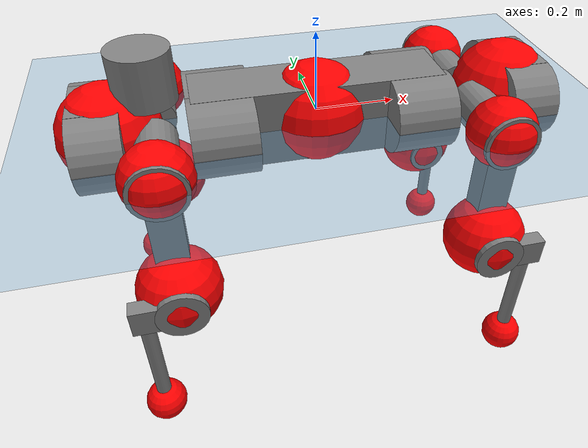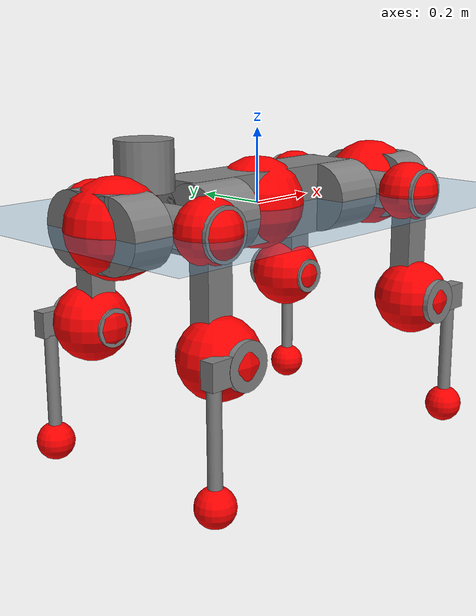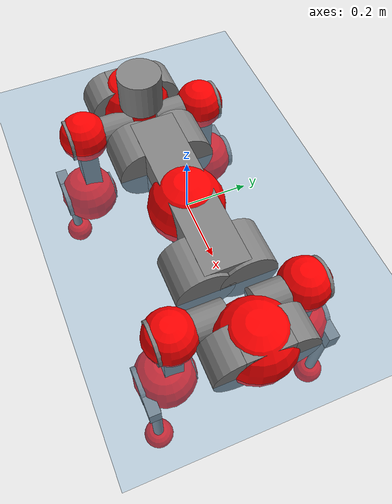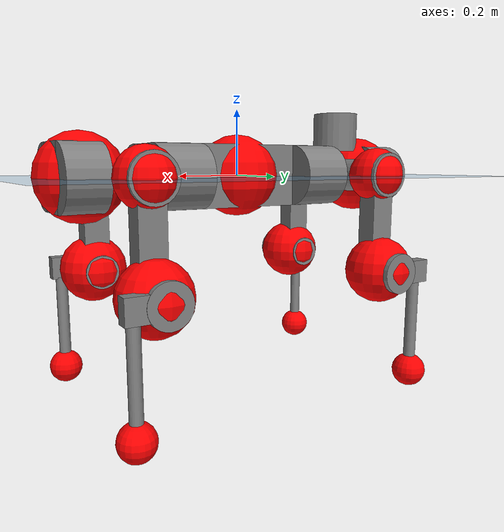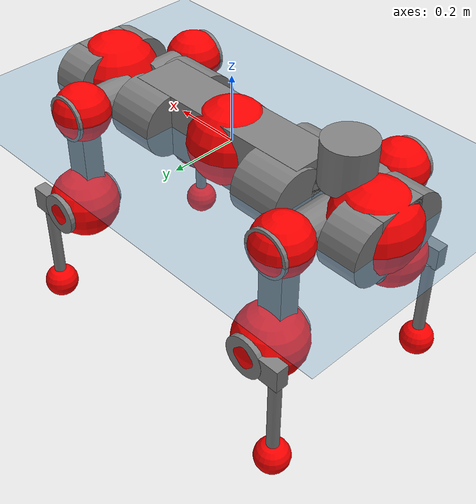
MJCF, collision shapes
<mujoco model="anymal_c">
  <compiler angle="radian" assetdir="assets" balanceinertia="true" inertiafromgeom="false"/>

  <option timestep="0.005" density="1.2" viscosity="2e-05"/>

  <size nkey="1"/>

  <visual>
    <quality shadowsize="8192"/>
    <map shadowclip="0.5"/>
  </visual>

  <default>
    <default class="/">
      <material specular="0" shininess="0.25"/>
      <geom contype="0" conaffinity="0" group="1" solref="-1000 -80"/>
      <site size="0.01 0.005 0.005" group="5"/>
      <general forcelimited="true" forcerange="-80 80" biastype="affine" gainprm="80" biasprm="0 -80 -2"/>
      <default class="anymal_c">
        <joint armature="0.01" damping="0.01" frictionloss="0.1"/>
        <default class="visual">
          <geom type="mesh" group="2"/>
          <default class="visual_zflip"/>
        </default>
        <default class="collision">
          <geom type="cylinder" group="3"/>
          <default class="foot">
            <geom size="0.03 0 0" type="sphere" condim="6" priority="1" friction="0.8 0.02 0.01" solimp="0.015 1 0.03"/>
          </default>
        </default>
      </default>
      <default class="reward_collision_sphere">
        <geom group="5" rgba="1 0 0 1"/>
      </default>
    </default>
  </default>

  <asset>
    <texture type="skybox" colorspace="auto" name="//unnamed_texture_0" builtin="gradient" rgb1="0.95 0.95 0.95" rgb2="0.95 0.95 0.95" width="100" height="600"/>
    <texture type="2d" colorspace="auto" name="texplane" builtin="checker" rgb1="0.345 0.575 0.748" rgb2="0.345 0.575 0.748" markrgb="1 1 1" width="512" height="512"/>
    <texture type="2d" colorspace="linear" name="base" file="base.png"/>
    <texture type="2d" colorspace="linear" name="top_shell" file="top_shell.png"/>
    <texture type="2d" colorspace="linear" name="bottom_shell" file="bottom_shell.png"/>
    <texture type="2d" colorspace="linear" name="remote" file="remote.png"/>
    <texture type="2d" colorspace="linear" name="hatch" file="hatch.png"/>
    <texture type="2d" colorspace="linear" name="handle" file="handle.png"/>
    <texture type="2d" colorspace="linear" name="face" file="face.png"/>
    <texture type="2d" colorspace="linear" name="battery" file="battery.png"/>
    <texture type="2d" colorspace="linear" name="lidar_cage" file="lidar_cage.png"/>
    <texture type="2d" colorspace="linear" name="depth_camera" file="depth_camera.png"/>
    <texture type="2d" colorspace="linear" name="wide_angle_camera" file="wide_angle_camera.png"/>
    <texture type="2d" colorspace="linear" name="lidar" file="lidar.png"/>
    <texture type="2d" colorspace="linear" name="drive" file="drive.png"/>
    <texture type="2d" colorspace="linear" name="hip_l" file="hip_l.png"/>
    <texture type="2d" colorspace="linear" name="shank_l" file="shank_l.png"/>
    <texture type="2d" colorspace="linear" name="foot" file="foot.png"/>
    <texture type="2d" colorspace="linear" name="thigh" file="thigh.png"/>
    <texture type="2d" colorspace="linear" name="shank_r" file="shank_r.png"/>
    <texture type="2d" colorspace="linear" name="hip_r" file="hip_r.png"/>
    <material name="MatPlane" class="/" texture="texplane" texuniform="true" texrepeat="2 2" specular="0.9" shininess="0.5"/>
    <material name="black_plastic" class="/" rgba="0.007 0.007 0.007 1"/>
    <material name="green" class="/" rgba="0.052 0.178 0.033 1"/>
    <material name="red" class="/" rgba="0.178 0.006 0.005 1"/>
    <material name="yellow" class="/" rgba="0.178 0.119 0.006 1"/>
    <material name="lwl" class="/" rgba="0.8 0.8 0.8 1"/>
    <material name="base" class="/" texture="base"/>
    <material name="top_shell" class="/" texture="top_shell"/>
    <material name="bottom_shell" class="/" texture="bottom_shell"/>
    <material name="hip_l" class="/" texture="hip_l"/>
    <material name="thigh" class="/" texture="thigh"/>
    <material name="shank_l" class="/" texture="shank_l"/>
    <material name="foot" class="/" texture="foot"/>
    <material name="hip_r" class="/" texture="hip_r"/>
    <material name="shank" class="/" texture="shank_r"/>
    <material name="hatch" class="/" texture="hatch"/>
    <material name="remote" class="/" texture="remote"/>
    <material name="handle" class="/" texture="handle"/>
    <material name="face" class="/" texture="face"/>
    <material name="depth_camera" class="/" texture="depth_camera"/>
    <material name="wide_angle_camera" class="/" texture="wide_angle_camera"/>
    <material name="battery" class="/" texture="battery"/>
    <material name="lidar_cage" class="/" texture="lidar_cage"/>
    <material name="lidar" class="/" texture="lidar"/>
    <material name="drive" class="/" texture="drive"/>
    <mesh name="base_0" class="/" file="base_0.obj"/>
    <mesh name="base_1" class="/" file="base_1.obj"/>
    <mesh name="base_2" class="/" file="base_2.obj"/>
    <mesh name="base_3" class="/" file="base_3.obj"/>
    <mesh name="base_4" class="/" file="base_4.obj"/>
    <mesh name="base_5" class="/" file="base_5.obj"/>
    <mesh name="top_shell" class="/" file="top_shell.obj"/>
    <mesh name="bottom_shell" class="/" file="bottom_shell.obj"/>
    <mesh name="remote" class="/" file="remote.obj"/>
    <mesh name="handle" class="/" file="handle.obj"/>
    <mesh name="face" class="/" file="face.obj"/>
    <mesh name="wide_angle_camera" class="/" file="wide_angle_camera.obj"/>
    <mesh name="depth_camera" class="/" file="depth_camera.obj"/>
    <mesh name="battery" class="/" file="battery.obj"/>
    <mesh name="lidar_cage" class="/" file="lidar_cage.obj"/>
    <mesh name="lidar" class="/" file="lidar.obj"/>
    <mesh name="drive" class="/" file="drive.obj"/>
    <mesh name="hip_l" class="/" file="hip_l.obj"/>
    <mesh name="thigh" class="/" file="thigh.obj"/>
    <mesh name="shank_l" class="/" file="shank_l.obj"/>
    <mesh name="foot" class="/" file="foot.obj"/>
    <mesh name="hip_r" class="/" file="hip_r.obj"/>
    <mesh name="hatch" class="/" file="hatch.obj"/>
    <mesh name="shank_r" class="/" file="shank_r.obj"/>
  </asset>

  <worldbody>
    <geom name="floor" class="/" size="100 100 0.125" type="plane" group="0" material="MatPlane"/>
    <light name="toplight_shadow" class="/" pos="0 0 5" dir="0.0990148 0.0990148 -0.990148" type="directional" ambient="0.04 0.04 0.04" diffuse="0.55 0.55 0.55" specular="0.12 0.12 0.12"/>
    <light name="toplight_fill" class="/" pos="0 0 5" dir="0.0990148 0.0990148 -0.990148" type="directional" castshadow="false" ambient="0.04 0.04 0.04" diffuse="0.3 0.3 0.3" specular="0.08 0.08 0.08"/>
    <body name="trunk" childclass="anymal_c" pos="0.000265557 -0.000307117 0.000657952" quat="1 0.000587861 0.000250797 0.000397014">
      <inertial pos="0.000892434 -0.00273348 0.0499212" quat="0.501063 0.49854 0.498336 0.502052" mass="22.4963" diaginertia="1.00893 0.571067 0.280784"/>
      <joint name="//unnamed_joint_0" type="free" armature="0" damping="0" frictionloss="0"/>
      <geom name="//unnamed_geom_1" class="visual" material="green" mesh="base_0"/>
      <geom name="//unnamed_geom_2" class="visual" material="yellow" mesh="base_1"/>
      <geom name="//unnamed_geom_3" class="visual" material="red" mesh="base_2"/>
      <geom name="//unnamed_geom_4" class="visual" material="black_plastic" mesh="base_3"/>
      <geom name="//unnamed_geom_5" class="visual" material="lwl" mesh="base_4"/>
      <geom name="//unnamed_geom_6" class="visual" material="base" mesh="base_5"/>
      <geom name="trunk_1" class="collision" size="0.303017 0.0731421 0.0940398" type="box"/>
      <geom name="trunk_2" class="collision" size="0.0940398 0.0757543" pos="0.238347 0.0688682 0" quat="0.707107 0 0.707107 0"/>
      <geom name="trunk_3" class="collision" size="0.0940398 0.0757543" pos="-0.238347 0.0688682 0" quat="0.707107 0 0.707107 0"/>
      <geom name="trunk_4" class="collision" size="0.0940398 0.0757543" pos="0.238347 -0.0688682 0" quat="0.707107 0 0.707107 0"/>
      <geom name="trunk_5" class="collision" size="0.0940398 0.0757543" pos="-0.238347 -0.0688682 0" quat="0.707107 0 0.707107 0"/>
      <geom name="//unnamed_geom_12" class="visual" material="top_shell" mesh="top_shell"/>
      <geom name="//unnamed_geom_13" class="visual" material="bottom_shell" mesh="bottom_shell"/>
      <geom name="//unnamed_geom_14" class="visual" material="remote" mesh="remote"/>
      <geom name="//unnamed_geom_15" class="visual" material="handle" mesh="handle"/>
      <geom name="//unnamed_geom_16" class="visual" pos="0.454229 0 0" quat="1 0 0 0" material="face" mesh="face"/>
      <geom name="trunk_6" class="collision" size="0.0574688 0.0731421 0.0940398" pos="0.514501 0 0" type="box"/>
      <geom name="//unnamed_geom_18" class="collision" size="0.0940398 0.0574688" pos="0.514501 0.0688682 0" quat="0.707107 0 0.707107 0"/>
      <geom name="//unnamed_geom_19" class="collision" size="0.0940398 0.0574688" pos="0.514501 -0.0688682 0" quat="0.707107 0 0.707107 0"/>
      <geom name="//unnamed_geom_20" class="visual" pos="0.505896 0 -0.0304948" quat="0.965926 0 0.258819 0" material="depth_camera" mesh="depth_camera"/>
      <geom name="//unnamed_geom_21" class="visual" pos="0.56217 0 0.0157931" material="wide_angle_camera" mesh="wide_angle_camera"/>
      <geom name="//unnamed_geom_22" class="visual_zflip" pos="-0.454229 0 0" quat="0 0 0 1" material="face" mesh="face"/>
      <geom name="trunk_7" class="collision" size="0.0574688 0.0731421 0.0940398" pos="-0.514501 0 0" quat="0 0 0 1" type="box"/>
      <geom name="//unnamed_geom_24" class="collision" size="0.0940398 0.0574688" pos="-0.514501 -0.0688682 0" quat="0 -0.707107 0 0.707107"/>
      <geom name="//unnamed_geom_25" class="collision" size="0.0940398 0.0574688" pos="-0.514501 0.0688682 0" quat="0 -0.707107 0 0.707107"/>
      <geom name="//unnamed_geom_26" class="visual" pos="-0.505896 0 -0.0304948" quat="0 -0.258819 0 0.965926" material="depth_camera" mesh="depth_camera"/>
      <geom name="//unnamed_geom_27" class="visual_zflip" pos="-0.56217 0 0.0157931" quat="0 0 0 1" material="wide_angle_camera" mesh="wide_angle_camera"/>
      <geom name="//unnamed_geom_28" class="visual" material="battery" mesh="battery"/>
      <geom name="//unnamed_geom_29" class="visual" pos="0 0.0737522 0.0309578" quat="0.683013 -0.183013 0.183013 0.683013" material="depth_camera" mesh="depth_camera"/>
      <geom name="//unnamed_geom_30" class="visual" pos="0 -0.0737522 0.0309578" quat="0.683013 0.183013 0.183013 -0.683013" material="depth_camera" mesh="depth_camera"/>
      <geom name="//unnamed_geom_31" class="visual" pos="-0.398889 0 0.0775411" quat="1 0 0 0" material="lidar_cage" mesh="lidar_cage"/>
      <geom name="trunk_8" class="collision" size="0.0731421 0.0626932" pos="-0.398889 0 0.14084"/>
      <geom name="//unnamed_geom_33" class="visual" pos="-0.398889 -4.4008e-05 0.150018" quat="0.707107 0 0 -0.707107" material="lidar" mesh="lidar"/>
      <geom name="//unnamed_geom_34" class="visual" pos="0.328645 0.102344 -1.22732e-09" quat="0.258819 0.965926 0 0" material="drive" mesh="drive"/>
      <geom name="//unnamed_geom_35" class="visual" pos="0.328645 -0.102344 1.22732e-09" quat="0.258819 -0.965926 0 0" material="drive" mesh="drive"/>
      <geom name="//unnamed_geom_36" class="visual" pos="-0.328645 0.102344 1.22732e-09" quat="0 0 0.965926 -0.258819" material="drive" mesh="drive"/>
      <geom name="//unnamed_geom_37" class="visual" pos="-0.328645 -0.102344 -1.22732e-09" quat="0 0 -0.965926 -0.258819" material="drive" mesh="drive"/>
      <geom name="//unnamed_geom_38" class="visual" pos="0.127118 0 0.0770136" quat="1 0 0 0" material="hatch" mesh="hatch"/>
      <geom name="//unnamed_geom_39" class="reward_collision_sphere" size="0.125386"/>
      <geom name="//unnamed_geom_40" class="reward_collision_sphere" size="0.125386" pos="0.493132 0 0"/>
      <geom name="//unnamed_geom_41" class="reward_collision_sphere" size="0.125386" pos="-0.493132 0 0"/>
      <site name="imu" pos="0.285074 0.00765016 0.0363223" size="0.0104489"/>
      <camera name="track" pos="0 -1.96766 0" quat="0.707107 0.707107 0 0" mode="trackcom"/>
      <camera name="ego_camera" pos="0.493132 0 -0.0421992" quat="-0.5 -0.5 0.5 0.5"/>
      <body name="LF_HIP" pos="0.326298 0.0996996 -0.00134909" quat="0.258299 0.966065 -2.07857e-05 -3.12662e-05">
        <inertial pos="0.0619333 -0.0175407 -0.00779378" quat="-0.127962 0.709587 -0.135434 0.679536" mass="3.17702" diaginertia="0.0091119 0.00427663 0.00418858"/>
        <joint name="LF_HAA" pos="0 0 0" axis="0.999999 -0.00150043 0.000295443" range="-0.724187 0.514254" armature="0.0104611" damping="0.0226912" frictionloss="0.0906784"/>
        <geom name="//unnamed_geom_42" class="visual" pos="0 -7.21976e-05 1.18584e-05" quat="0.258819 -0.965926 0 0" material="hip_l" mesh="hip_l"/>
        <geom name="//unnamed_geom_43" class="visual" pos="0.0656413 -0.0780888 -0.0456108" quat="0.183013 -0.683013 0.683013 0.183013" material="drive" mesh="drive"/>
        <geom name="//unnamed_geom_44" class="collision" size="0.0522443 0.0731421" pos="0.0656413 -0.0117664 -0.00728464" quat="-0.353553 -0.612372 0.612372 -0.353553"/>
        <body name="LF_THIGH" pos="0.0638815 -0.0689678 -0.0429177" quat="0.183732 -0.682901 0.683226 0.181912">
          <inertial pos="0.0337325 0.000222718 -0.257027" quat="0.99287 0.0072187 -0.0776076 0.0901914" mass="3.41755" diaginertia="0.0483288 0.0271128 0.00553666"/>
          <joint name="LF_HFE" pos="0 0 0" axis="0.999996 0.00296763 0.000237169" stiffness="0.00358765" range="-3.08909 3.19011" armature="0.0106125" damping="0.0220951" frictionloss="0.0928655"/>
          <geom name="//unnamed_geom_45" class="visual" pos="0.00222868 3.51187e-06 0" quat="0.707107 0 0 -0.707107" material="thigh" mesh="thigh"/>
          <geom name="//unnamed_geom_46" class="collision" size="0.0679176 0.0417955" pos="0.0438339 0 0" quat="0.5 0.5 -0.5 -0.5"/>
          <geom name="//unnamed_geom_47" class="collision" size="0.0391833 0.0313466 0.147657" pos="0.0328754 0 -0.149084" quat="0.707107 0 0 -0.707107" type="box"/>
          <geom name="//unnamed_geom_48" class="visual" pos="0.109914 0 -0.300669" quat="1 0 0 0" material="drive" mesh="drive"/>
          <geom name="//unnamed_geom_49" class="collision" size="0.0522443 0.0731421" pos="0.0332042 0 -0.300669" quat="0.707107 0 0.707107 0"/>
          <geom name="//unnamed_geom_50" class="reward_collision_sphere" size="0.0835909" pos="0.0273962 0 0"/>
          <body name="LF_SHANK" pos="0.111201 0.00267338 -0.299582" quat="1 6.15346e-05 -0.00012255 3.88513e-05">
            <inertial pos="0.00569042 -0.0609325 -0.0868245" quat="0.993009 -0.115016 0.00110626 -0.0265326" mass="0.681468" diaginertia="0.0156854 0.00851928 0.00146665"/>
            <joint name="LF_KFE" pos="0 0 0" axis="0.999982 -0.00592794 0.000273334" range="-3.0888 3.14887" armature="0.0107314" damping="0.00500161" frictionloss="0.107335"/>
            <geom name="//unnamed_geom_51" class="visual" pos="0.000726722 0.00387492 0" quat="0.707107 0 0 -0.707107" material="shank_l" mesh="shank_l"/>
            <geom name="LF_kfe_act" class="collision" size="0.0626932 0.0208977" pos="0.021917 0 0" quat="0.5 0.5 -0.5 -0.5"/>
            <geom name="//unnamed_geom_53" class="collision" size="0.0600799 0.0352649 0.0198528" pos="0.021917 -0.0565694 0" quat="0.5 0.5 -0.5 -0.5" type="box"/>
            <geom name="//unnamed_geom_54" class="visual" pos="0.0143006 -0.0852793 -0.356552" quat="0.382683 0 0 -0.92388" material="foot" mesh="foot"/>
            <geom name="LF_calf" class="collision" size="0.0182855 0.147592" pos="0.0143008 -0.086528 -0.178276" quat="0.707107 0 0 -0.707107"/>
            <geom name="LF_foot" class="foot" size="0.0309676" pos="0.0143008 -0.086528 -0.332815" quat="0.707107 0 0 -0.707107"/>
            <geom name="//unnamed_geom_57" class="reward_collision_sphere" size="0.104489" pos="-0.0547924 0 0"/>
            <geom name="//unnamed_geom_58" class="reward_collision_sphere" size="0.0522443" pos="0.0143008 -0.086528 -0.332815"/>
            <site name="LF_foot" class="foot" pos="0.0143008 -0.086528 -0.332815" quat="0.707107 0 0 -0.707107" size="0.0104489"/>
          </body>
        </body>
      </body>
      <body name="RF_HIP" pos="0.326595 -0.102717 0.000508641" quat="0.258805 -0.96593 -3.3757e-05 6.45611e-05">
        <inertial pos="0.0597399 0.0135836 -0.011457" quat="0.133136 0.680148 0.117746 0.711203" mass="3.15856" diaginertia="0.00881998 0.00461932 0.00409712"/>
        <joint name="RF_HAA" pos="0 0 0" axis="0.999926 -0.0110169 0.0052489" range="-0.513411 0.728541" armature="0.010698" damping="0" frictionloss="0.10894"/>
        <geom name="//unnamed_geom_59" class="visual" pos="0 7.2197e-05 1.18584e-05" quat="0.258819 0.965926 0 0" material="hip_r" mesh="hip_r"/>
        <geom name="//unnamed_geom_60" class="visual" pos="0.0656413 0.0780888 -0.0456108" quat="0.183013 0.683013 0.683013 -0.183013" material="drive" mesh="drive"/>
        <geom name="//unnamed_geom_61" class="collision" size="0.0522443 0.0731421" pos="0.0656413 0.0117664 -0.00728464" quat="-0.353553 0.612372 0.612372 0.353553"/>
        <body name="RF_THIGH" pos="0.0680161 0.069918 -0.0467656" quat="0.182766 0.683668 0.682666 -0.182103">
          <inertial pos="0.0362766 -0.000328152 -0.261089" quat="0.994081 -0.00235632 -0.0722268 0.0811195" mass="3.66601" diaginertia="0.0468072 0.0268795 0.0056984"/>
          <joint name="RF_HFE" pos="0 0 0" axis="0.999999 -0.000248392 -0.0014363" range="-3.13097 3.15609" armature="0.00921822" damping="0.0102686" frictionloss="0.111216"/>
          <geom name="//unnamed_geom_62" class="visual" pos="0.00222868 3.51187e-06 0" quat="0.707107 0 0 -0.707107" material="thigh" mesh="thigh"/>
          <geom name="//unnamed_geom_63" class="collision" size="0.0679176 0.0417955" pos="0.0438339 0 0" quat="0.5 0.5 0.5 0.5"/>
          <geom name="//unnamed_geom_64" class="collision" size="0.0391833 0.0313466 0.147657" pos="0.0328754 0 -0.149084" quat="0.707107 0 0 0.707107" type="box"/>
          <geom name="//unnamed_geom_65" class="visual" pos="0.109914 0 -0.300669" quat="1 0 0 0" material="drive" mesh="drive"/>
          <geom name="//unnamed_geom_66" class="collision" size="0.0522443 0.0731421" pos="0.0332042 0 -0.300669" quat="0.707107 0 0.707107 0"/>
          <geom name="//unnamed_geom_67" class="reward_collision_sphere" size="0.0835909" pos="0.0273962 0 0"/>
          <body name="RF_SHANK" pos="0.107176 0.000493247 -0.301181" quat="0.999999 -0.000461372 -0.000848334 -0.000546576">
            <inertial pos="0.00339937 0.060367 -0.0850114" quat="0.991838 0.125771 -0.00102687 0.0209233" mass="0.715109" diaginertia="0.016883 0.00864188 0.00151601"/>
            <joint name="RF_KFE" pos="0 0 0" axis="1 -0.000795368 0.000599332" range="-3.18632 3.08847" armature="0.0120708" damping="0.0213993" frictionloss="0.112519"/>
            <geom name="//unnamed_geom_68" class="visual" pos="0.000726718 -0.00387491 0" quat="0.707107 0 0 0.707107" material="shank" mesh="shank_r"/>
            <geom name="RF_kfe_act" class="collision" size="0.0626932 0.0208977" pos="0.021917 0 0" quat="0.5 0.5 0.5 0.5"/>
            <geom name="//unnamed_geom_70" class="collision" size="0.0600799 0.0352649 0.0198528" pos="0.021917 0.0565694 0" quat="0.5 0.5 0.5 0.5" type="box"/>
            <geom name="//unnamed_geom_71" class="visual" pos="0.014301 0.0852793 -0.356552" quat="0.382683 0 0 0.92388" material="foot" mesh="foot"/>
            <geom name="RF_calf" class="collision" size="0.0182855 0.147592" pos="0.0143008 0.086528 -0.178276" quat="0.707107 0 0 0.707107"/>
            <geom name="RF_foot" class="foot" size="0.0279981" pos="0.0143008 0.086528 -0.332815" quat="0.707107 0 0 0.707107"/>
            <geom name="//unnamed_geom_74" class="reward_collision_sphere" size="0.104489" pos="-0.0547924 0 0"/>
            <geom name="//unnamed_geom_75" class="reward_collision_sphere" size="0.0522443" pos="0.0143008 0.086528 -0.332815"/>
            <site name="RF_foot" class="foot" pos="0.0143008 0.086528 -0.332815" quat="0.707107 0 0 0.707107" size="0.0104489"/>
          </body>
        </body>
      </body>
      <body name="LH_HIP" pos="-0.325468 0.10013 -0.0016936" quat="5.6616e-05 -5.5027e-05 0.965948 -0.258737">
        <inertial pos="0.0620262 0.0174788 -0.0110735" quat="0.124995 0.686719 0.129402 0.704307" mass="3.2634" diaginertia="0.0097307 0.00470644 0.00431182"/>
        <joint name="LH_HAA" pos="0 0 0" axis="0.999886 0.000404614 -0.0151162" range="-0.504267 0.739784" armature="0.011089" damping="0" frictionloss="0.104245"/>
        <geom name="//unnamed_geom_76" class="visual" pos="0 7.2197e-05 1.18584e-05" quat="-0.258819 -0.965926 0 0" material="hip_r" mesh="hip_r"/>
        <geom name="//unnamed_geom_77" class="visual" pos="0.0656413 0.0780888 -0.0456108" quat="0.183013 0.683013 0.683013 -0.183013" material="drive" mesh="drive"/>
        <geom name="//unnamed_geom_78" class="collision" size="0.0522443 0.0731421" pos="0.0656413 0.0117664 -0.00728464" quat="-0.353553 0.612372 0.612372 0.353553"/>
        <body name="LH_THIGH" pos="0.0646057 0.0700739 -0.0437569" quat="0.182963 0.682974 0.683071 -0.182992">
          <inertial pos="0.0320204 0.000366673 -0.261343" quat="0.992742 -0.00703346 -0.0795633 0.0899076" mass="3.33247" diaginertia="0.0450077 0.0275139 0.00533879"/>
          <joint name="LH_HFE" pos="0 0 0" axis="1 0.000898429 0.000285836" stiffness="0.0103594" range="-3.18188 3.08732" armature="0.0100385" damping="0" frictionloss="0.105862"/>
          <geom name="//unnamed_geom_79" class="visual" pos="0.00222868 3.51187e-06 0" quat="0.707107 0 0 -0.707107" material="thigh" mesh="thigh"/>
          <geom name="//unnamed_geom_80" class="collision" size="0.0679176 0.0417955" pos="0.0438339 0 0" quat="0.5 0.5 -0.5 -0.5"/>
          <geom name="//unnamed_geom_81" class="collision" size="0.0391833 0.0313466 0.147657" pos="0.0328754 0 -0.149084" quat="0.707107 0 0 -0.707107" type="box"/>
          <geom name="//unnamed_geom_82" class="visual" pos="0.109914 0 -0.300669" quat="1 0 0 0" material="drive" mesh="drive"/>
          <geom name="//unnamed_geom_83" class="collision" size="0.0522443 0.0731421" pos="0.0332042 0 -0.300669" quat="0.707107 0 0.707107 0"/>
          <geom name="//unnamed_geom_84" class="reward_collision_sphere" size="0.0835909" pos="0.0273962 0 0"/>
          <body name="LH_SHANK" pos="0.109141 -0.000253099 -0.30148" quat="1 2.98422e-05 3.92388e-05 -7.76319e-05">
            <inertial pos="0.00793232 0.0628931 -0.0854957" quat="0.994094 0.106789 0.00427424 0.0188466" mass="0.686497" diaginertia="0.0158618 0.0089956 0.00149856"/>
            <joint name="LH_KFE" pos="0 0 0" axis="0.999999 0.000565777 -0.000830926" range="-3.08882 3.08589" armature="0.0117806" damping="0.0222223" frictionloss="0.0898669"/>
            <geom name="//unnamed_geom_85" class="visual" pos="0.000726718 -0.00387491 0" quat="-0.707107 0 0 -0.707107" material="shank" mesh="shank_r"/>
            <geom name="LH_kfe_act" class="collision" size="0.0626932 0.0208977" pos="0.021917 0 0" quat="0.5 0.5 -0.5 -0.5"/>
            <geom name="//unnamed_geom_87" class="collision" size="0.0600799 0.0352649 0.0198528" pos="0.021917 0.0565694 0" quat="0.5 0.5 -0.5 -0.5" type="box"/>
            <geom name="//unnamed_geom_88" class="visual" pos="0.014301 0.0852793 -0.356552" quat="-0.382683 0 0 -0.92388" material="foot" mesh="foot"/>
            <geom name="LH_calf" class="collision" size="0.0182855 0.147592" pos="0.0143008 0.086528 -0.178276" quat="0.707107 0 0 -0.707107"/>
            <geom name="LH_foot" class="foot" size="0.0350384" pos="0.0143008 0.086528 -0.332815" quat="0.707107 0 0 -0.707107"/>
            <geom name="//unnamed_geom_91" class="reward_collision_sphere" size="0.104489" pos="-0.0547924 0 0"/>
            <geom name="//unnamed_geom_92" class="reward_collision_sphere" size="0.0522443" pos="0.0143008 0.086528 -0.332815"/>
            <site name="LH_foot" class="foot" pos="0.0143008 0.086528 -0.332815" quat="0.707107 0 0 -0.707107" size="0.0104489"/>
          </body>
        </body>
      </body>
      <body name="RH_HIP" pos="-0.32677 -0.103587 0.00182575" quat="-3.69756e-05 0.000163004 -0.965912 -0.258872">
        <inertial pos="0.0597242 -0.0131149 -0.0111718" quat="-0.125885 0.711055 -0.142646 0.676909" mass="3.20406" diaginertia="0.00899561 0.00445436 0.00420814"/>
        <joint name="RH_HAA" pos="0 0 0" axis="0.99991 0.00435924 0.0127169" range="-0.775467 0.5351" armature="0.00980465" damping="0.00108687" frictionloss="0.10398"/>
        <geom name="//unnamed_geom_93" class="visual" pos="0 -7.21976e-05 1.18584e-05" quat="-0.258819 0.965926 0 0" material="hip_l" mesh="hip_l"/>
        <geom name="//unnamed_geom_94" class="visual" pos="0.0656413 -0.0780888 -0.0456108" quat="-0.183013 0.683013 -0.683013 -0.183013" material="drive" mesh="drive"/>
        <geom name="//unnamed_geom_95" class="collision" size="0.0522443 0.0731421" pos="0.0656413 -0.0117664 -0.00728464" quat="0.353553 0.612372 -0.612372 0.353553"/>
        <body name="RH_THIGH" pos="0.0677198 -0.0701076 -0.0461999" quat="-0.183941 0.683522 -0.682398 -0.182472">
          <inertial pos="0.0338673 0.00219689 -0.259418" quat="0.99317 -0.00357826 -0.080989 0.083918" mass="3.27407" diaginertia="0.0446783 0.0269422 0.00536723"/>
          <joint name="RH_HFE" pos="0 0 0" axis="0.999992 0.00155574 0.00374339" stiffness="0.000418086" range="-3.09364 3.14388" armature="0.0109499" damping="0.0175005" frictionloss="0.104132"/>
          <geom name="//unnamed_geom_96" class="visual" pos="0.00222868 3.51187e-06 0" quat="0.707107 0 0 -0.707107" material="thigh" mesh="thigh"/>
          <geom name="//unnamed_geom_97" class="collision" size="0.0679176 0.0417955" pos="0.0438339 0 0" quat="0.5 0.5 0.5 0.5"/>
          <geom name="//unnamed_geom_98" class="collision" size="0.0391833 0.0313466 0.147657" pos="0.0328754 0 -0.149084" quat="0.707107 0 0 0.707107" type="box"/>
          <geom name="//unnamed_geom_99" class="visual" pos="0.109914 0 -0.300669" quat="1 0 0 0" material="drive" mesh="drive"/>
          <geom name="//unnamed_geom_100" class="collision" size="0.0522443 0.0731421" pos="0.0332042 0 -0.300669" quat="0.707107 0 0.707107 0"/>
          <geom name="//unnamed_geom_101" class="reward_collision_sphere" size="0.0835909" pos="0.0273962 0 0"/>
          <body name="RH_SHANK" pos="0.109196 0.00271761 -0.300194" quat="0.999999 1.15809e-05 -0.00111167 0.000554567">
            <inertial pos="0.00889665 -0.0615451 -0.0852448" quat="0.993188 -0.115044 0.00929834 -0.0159722" mass="0.678896" diaginertia="0.0156151 0.00851943 0.00142399"/>
            <joint name="RH_KFE" pos="0 0 0" axis="0.999998 -0.00199078 0.000728315" range="-3.12814 3.18795" armature="0.010351" damping="0.0218502" frictionloss="0.112237"/>
            <geom name="//unnamed_geom_102" class="visual" pos="0.000726722 0.00387492 0" quat="0.707107 0 0 -0.707107" material="shank_l" mesh="shank_l"/>
            <geom name="RH_kfe_act" class="collision" size="0.0626932 0.0208977" pos="0.021917 0 0" quat="0.5 0.5 0.5 0.5"/>
            <geom name="//unnamed_geom_104" class="collision" size="0.0600799 0.0352649 0.0198528" pos="0.021917 -0.0565694 0" quat="0.5 0.5 0.5 0.5" type="box"/>
            <geom name="//unnamed_geom_105" class="visual" pos="0.0143006 -0.0852793 -0.356552" quat="0.382683 0 0 -0.92388" material="foot" mesh="foot"/>
            <geom name="RH_calf" class="collision" size="0.0182855 0.147592" pos="0.0143008 -0.086528 -0.178276" quat="0.707107 0 0 0.707107"/>
            <geom name="RH_foot" class="foot" size="0.0270839" pos="0.0143008 -0.086528 -0.332815" quat="0.707107 0 0 0.707107"/>
            <geom name="//unnamed_geom_108" class="reward_collision_sphere" size="0.104489" pos="-0.0547924 0 0"/>
            <geom name="//unnamed_geom_109" class="reward_collision_sphere" size="0.0522443" pos="0.0143008 -0.086528 -0.332815"/>
            <site name="RH_foot" class="foot" pos="0.0143008 -0.086528 -0.332815" quat="0.707107 0 0 0.707107" size="0.0104489"/>
          </body>
        </body>
      </body>
    </body>
  </worldbody>

  <contact>
    <pair class="/" geom1="floor" geom2="LF_foot" name="//unnamed_contact_0"/>
    <pair class="/" geom1="floor" geom2="RF_foot" name="//unnamed_contact_1"/>
    <pair class="/" geom1="floor" geom2="LH_foot" name="//unnamed_contact_2"/>
    <pair class="/" geom1="floor" geom2="RH_foot" name="//unnamed_contact_3"/>
  </contact>

  <actuator>
    <general name="LF_HAA" class="/" joint="LF_HAA" forcerange="-75.5858 75.5858" gainprm="79.2401" biasprm="0 -79.2401 -2.08594"/>
    <general name="LF_HFE" class="/" joint="LF_HFE" forcerange="-76.1786 76.1786" gainprm="79.2401" biasprm="0 -79.2401 -2.08594"/>
    <general name="LF_KFE" class="/" joint="LF_KFE" forcerange="-82.8174 82.8174" gainprm="79.2401" biasprm="0 -79.2401 -2.08594"/>
    <general name="RF_HAA" class="/" joint="RF_HAA" forcerange="-83.6563 83.6563" gainprm="79.2401" biasprm="0 -79.2401 -2.08594"/>
    <general name="RF_HFE" class="/" joint="RF_HFE" forcerange="-93.9175 93.9175" gainprm="79.2401" biasprm="0 -79.2401 -2.08594"/>
    <general name="RF_KFE" class="/" joint="RF_KFE" forcerange="-86.3866 86.3866" gainprm="79.2401" biasprm="0 -79.2401 -2.08594"/>
    <general name="LH_HAA" class="/" joint="LH_HAA" forcerange="-85.0334 85.0334" gainprm="79.2401" biasprm="0 -79.2401 -2.08594"/>
    <general name="LH_HFE" class="/" joint="LH_HFE" forcerange="-75.4957 75.4957" gainprm="79.2401" biasprm="0 -79.2401 -2.08594"/>
    <general name="LH_KFE" class="/" joint="LH_KFE" forcerange="-88.3457 88.3457" gainprm="79.2401" biasprm="0 -79.2401 -2.08594"/>
    <general name="RH_HAA" class="/" joint="RH_HAA" forcerange="-86.4169 86.4169" gainprm="79.2401" biasprm="0 -79.2401 -2.08594"/>
    <general name="RH_HFE" class="/" joint="RH_HFE" forcerange="-92.6376 92.6376" gainprm="79.2401" biasprm="0 -79.2401 -2.08594"/>
    <general name="RH_KFE" class="/" joint="RH_KFE" forcerange="-81.8061 81.8061" gainprm="79.2401" biasprm="0 -79.2401 -2.08594"/>
  </actuator>

  <sensor>
    <gyro site="imu" name="imu_angular_velocity"/>
    <velocimeter site="imu" name="imu_linear_velocity"/>
    <framelinvel objtype="site" objname="LF_foot" name="LF_foot_global_linear_velocity"/>
    <framelinvel objtype="site" objname="RF_foot" name="RF_foot_global_linear_velocity"/>
    <framelinvel objtype="site" objname="LH_foot" name="LH_foot_global_linear_velocity"/>
    <framelinvel objtype="site" objname="RH_foot" name="RH_foot_global_linear_velocity"/>
  </sensor>

  <keyframe>
    <key name="home" qpos="0 0 0.55 1 0 0 0 0 0.4 -0.8 0 -0.4 0.8 0 -0.4 0.8 0 0.4 -0.8"/>
  </keyframe>
</mujoco>
